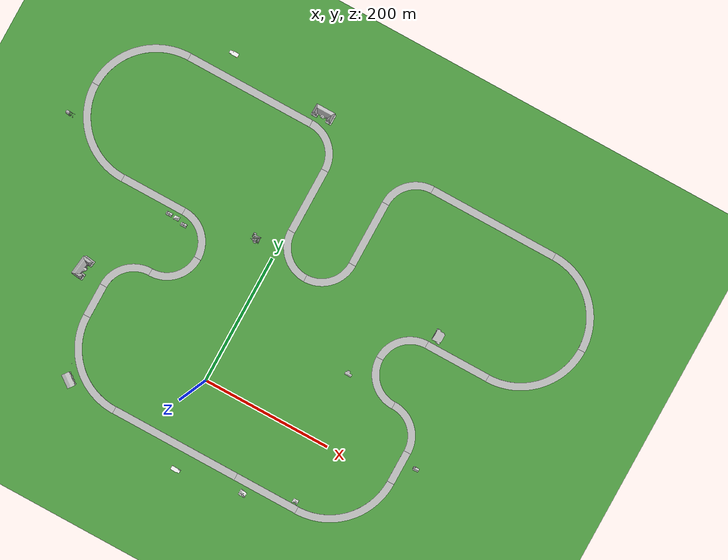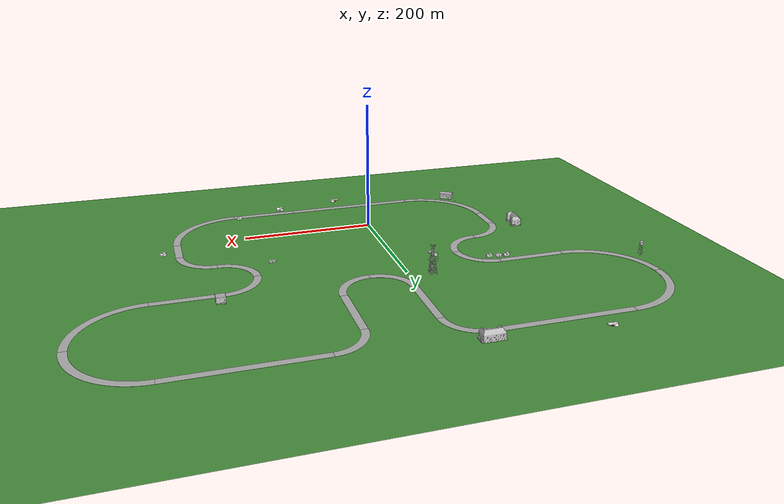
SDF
<sdf version="1.6">
 <world name="default">
  <light name="sun" type="directional">
   <pose>0 0 10 0 -0 0</pose>
   <diffuse>0.8 0.8 0.8 1</diffuse>
   <specular>0.2 0.2 0.2 1</specular>
   <attenuation>
    <range>1000</range>
    <constant>0.9</constant>
    <linear>0.01</linear>
    <quadratic>0.001</quadratic>
   </attenuation>
   <direction>-0.5 0.1 -0.9</direction>
  </light>
  <gravity>0 0 -9.8</gravity>
  <magnetic_field>6e-06 2.3e-05 -4.2e-05</magnetic_field>
  <atmosphere type="adiabatic"/>
  <physics name="default_physics" default="0" type="ode">
   <max_step_size>0.001</max_step_size>
   <real_time_factor>1</real_time_factor>
   <real_time_update_rate>1000</real_time_update_rate>
  </physics>
  <scene><ambient>0.4 0.4 0.4 1</ambient><background>0.7 0.7 0.7 1</background><shadows>1</shadows></scene>
  <audio><device>default</device></audio>
  <spherical_coordinates>
   <surface_model>EARTH_WGS84</surface_model>
   <latitude_deg>0</latitude_deg>
   <longitude_deg>0</longitude_deg>
   <elevation>0</elevation>
   <heading_deg>0</heading_deg>
  </spherical_coordinates>
  <model name="ground_plane">
   <static>1</static>
   <link name="link">
    <collision name="collision">
     <geometry><plane><normal>0 0 1</normal><size>100 100</size></plane></geometry>
     <surface><friction><ode><mu>100</mu><mu2>50</mu2></ode></friction></surface>
    </collision>
    <visual name="visual">
     <cast_shadows>0</cast_shadows>
     <geometry><plane><normal>0 0 1</normal><size>10000 10000</size></plane></geometry>
     <material>
      <script><uri>file://media/materials/scripts/ds_sim.material</uri><name>DSSim/GrassBackground</name></script>
     </material>
    </visual>
   </link>
  </model>
  <model name="Gas Station">
   <static>1</static>
   <link name="link">
    <collision name="collision">
     <geometry><mesh><uri>model://gas_station/meshes/gas_station.dae</uri></mesh></geometry>
    </collision>
    <visual name="visual">
     <geometry><mesh><uri>model://gas_station/meshes/gas_station.dae</uri></mesh></geometry>
     <material>
      <script>
       <uri>model://gas_station/materials/scripts</uri>
       <uri>model://gas_station/materials/textures</uri>
       <name>GasStation/Diffuse</name>
      </script>
      <shader type="normal_map_object_space"><normal_map>GasStation_Normal.png</normal_map></shader>
     </material>
    </visual>
   </link>
   <pose>24.6663 -132.783 0 0 -0 3.10504</pose>
  </model>
  <model name="(DS) Straight Road - 200m_8">
   <static>1</static>
   <link name="link">
    <inertial>
     <mass>1</mass>
     <inertia><ixx>1</ixx><iyy>1</iyy><izz>1</izz><ixy>0</ixy><ixz>0</ixz><iyz>0</iyz></inertia>
    </inertial>
    <collision name="collision">
     <geometry><mesh><uri>model://ds_straight_road_200m/meshes/straight_road_200m.dae</uri></mesh></geometry>
    </collision>
    <visual name="visual">
     <geometry><mesh><uri>model://ds_straight_road_200m/meshes/straight_road_200m.dae</uri></mesh></geometry>
    </visual>
   </link>
   <pose>4.98041 -90.7828 0 0 -0 0</pose>
  </model>
  <model name="(DS) Straight Road - 100m_0">
   <static>1</static>
   <link name="link">
    <inertial>
     <mass>1</mass>
     <inertia><ixx>1</ixx><iyy>1</iyy><izz>1</izz><ixy>0</ixy><ixz>0</ixz><iyz>0</iyz></inertia>
    </inertial>
    <collision name="collision">
     <geometry><mesh><uri>model://ds_straight_road_100m/meshes/straight_road_100m.dae</uri></mesh></geometry>
    </collision>
    <visual name="visual">
     <geometry><mesh><uri>model://ds_straight_road_100m/meshes/straight_road_100m.dae</uri></mesh></geometry>
    </visual>
   </link>
   <pose>154.969 -90.7906 0 0 -0 0</pose>
  </model>
  <model name="(DS) Curved Road - 100m_3">
   <static>1</static>
   <link name="link">
    <inertial>
     <mass>1</mass>
     <inertia><ixx>1</ixx><iyy>1</iyy><izz>1</izz><ixy>0</ixy><ixz>0</ixz><iyz>0</iyz></inertia>
    </inertial>
    <collision name="collision">
     <geometry><mesh><uri>model://ds_curved_road_100m/meshes/curved_road_100m.dae</uri></mesh></geometry>
    </collision>
    <visual name="visual">
     <geometry><mesh><uri>model://ds_curved_road_100m/meshes/curved_road_100m.dae</uri></mesh></geometry>
    </visual>
   </link>
   <pose>257.67 -53.7514 0 0 -0 0</pose>
  </model>
  <model name="(DS) Straight Road - 50m">
   <static>1</static>
   <link name="link">
    <inertial>
     <mass>1</mass>
     <inertia><ixx>1</ixx><iyy>1</iyy><izz>1</izz><ixy>0</ixy><ixz>0</ixz><iyz>0</iyz></inertia>
    </inertial>
    <collision name="collision">
     <geometry><mesh><uri>model://ds_straight_road_50m/meshes/straight_road_50m.dae</uri></mesh></geometry>
    </collision>
    <visual name="visual">
     <geometry><mesh><uri>model://ds_straight_road_50m/meshes/straight_road_50m.dae</uri></mesh></geometry>
    </visual>
   </link>
   <pose>314.936 23.9712 0 0 0 -1.5707</pose>
  </model>
  <model name="(DS) Curved Road - 100m_7">
   <static>1</static>
   <link name="link">
    <inertial>
     <mass>1</mass>
     <inertia><ixx>1</ixx><iyy>1</iyy><izz>1</izz><ixy>0</ixy><ixz>0</ixz><iyz>0</iyz></inertia>
    </inertial>
    <collision name="collision">
     <geometry><mesh><uri>model://ds_curved_road_100m/meshes/curved_road_100m.dae</uri></mesh></geometry>
    </collision>
    <visual name="visual">
     <geometry><mesh><uri>model://ds_curved_road_100m/meshes/curved_road_100m.dae</uri></mesh></geometry>
    </visual>
   </link>
   <pose>-147.731 -53.7561 0 0 0 -1.5707</pose>
  </model>
  <model name="(DS) Straight Road - 50m_2">
   <static>1</static>
   <link name="link">
    <inertial>
     <mass>1</mass>
     <inertia><ixx>1</ixx><iyy>1</iyy><izz>1</izz><ixy>0</ixy><ixz>0</ixz><iyz>0</iyz></inertia>
    </inertial>
    <collision name="collision">
     <geometry><mesh><uri>model://ds_straight_road_50m/meshes/straight_road_50m.dae</uri></mesh></geometry>
    </collision>
    <visual name="visual">
     <geometry><mesh><uri>model://ds_straight_road_50m/meshes/straight_road_50m.dae</uri></mesh></geometry>
    </visual>
   </link>
   <pose>-204.97 23.9511 0 0 -0 1.5707</pose>
  </model>
  <model name="(DS) Curved Road - 50m_1">
   <static>1</static>
   <link name="link">
    <inertial>
     <mass>1</mass>
     <inertia><ixx>1</ixx><iyy>1</iyy><izz>1</izz><ixy>0</ixy><ixz>0</ixz><iyz>0</iyz></inertia>
    </inertial>
    <collision name="collision">
     <geometry><mesh><uri>model://ds_curved_road_50m/meshes/curved_road_50m.dae</uri></mesh></geometry>
    </collision>
    <visual name="visual">
     <geometry><mesh><uri>model://ds_curved_road_50m/meshes/curved_road_50m.dae</uri></mesh></geometry>
    </visual>
   </link>
   <pose>-172.719 76.5402 0 0 -0 3.14159</pose>
  </model>
  <model name="(DS) Curved Road - 50m_2">
   <static>1</static>
   <link name="link">
    <inertial>
     <mass>1</mass>
     <inertia><ixx>1</ixx><iyy>1</iyy><izz>1</izz><ixy>0</ixy><ixz>0</ixz><iyz>0</iyz></inertia>
    </inertial>
    <collision name="collision">
     <geometry><mesh><uri>model://ds_curved_road_50m/meshes/curved_road_50m.dae</uri></mesh></geometry>
    </collision>
    <visual name="visual">
     <geometry><mesh><uri>model://ds_curved_road_50m/meshes/curved_road_50m.dae</uri></mesh></geometry>
    </visual>
   </link>
   <pose>-117.245 120.825 0 0 -0 0</pose>
  </model>
  <model name="(DS) Curved Road - 50m_3">
   <static>1</static>
   <link name="link">
    <inertial>
     <mass>1</mass>
     <inertia><ixx>1</ixx><iyy>1</iyy><izz>1</izz><ixy>0</ixy><ixz>0</ixz><iyz>0</iyz></inertia>
    </inertial>
    <collision name="collision">
     <geometry><mesh><uri>model://ds_curved_road_50m/meshes/curved_road_50m.dae</uri></mesh></geometry>
    </collision>
    <visual name="visual">
     <geometry><mesh><uri>model://ds_curved_road_50m/meshes/curved_road_50m.dae</uri></mesh></geometry>
    </visual>
   </link>
   <pose>-117.244 176.289 0 0 -0 1.5707</pose>
  </model>
  <model name="(DS) Straight Road - 100m_5">
   <static>1</static>
   <link name="link">
    <inertial>
     <mass>1</mass>
     <inertia><ixx>1</ixx><iyy>1</iyy><izz>1</izz><ixy>0</ixy><ixz>0</ixz><iyz>0</iyz></inertia>
    </inertial>
    <collision name="collision">
     <geometry><mesh><uri>model://ds_straight_road_100m/meshes/straight_road_100m.dae</uri></mesh></geometry>
    </collision>
    <visual name="visual">
     <geometry><mesh><uri>model://ds_straight_road_100m/meshes/straight_road_100m.dae</uri></mesh></geometry>
    </visual>
   </link>
   <pose>-194.968 208.536 0 0 -0 0</pose>
  </model>
  <model name="(DS) Curved Road - 50m_7">
   <static>1</static>
   <link name="link">
    <inertial>
     <mass>1</mass>
     <inertia><ixx>1</ixx><iyy>1</iyy><izz>1</izz><ixy>0</ixy><ixz>0</ixz><iyz>0</iyz></inertia>
    </inertial>
    <collision name="collision">
     <geometry><mesh><uri>model://ds_curved_road_50m/meshes/curved_road_50m.dae</uri></mesh></geometry>
    </collision>
    <visual name="visual">
     <geometry><mesh><uri>model://ds_curved_road_50m/meshes/curved_road_50m.dae</uri></mesh></geometry>
    </visual>
   </link>
   <pose>282.694 76.6819 0 0 -0 1.5707</pose>
  </model>
  <model name="(DS) Curved Road - 50m_8">
   <static>1</static>
   <link name="link">
    <inertial>
     <mass>1</mass>
     <inertia><ixx>1</ixx><iyy>1</iyy><izz>1</izz><ixy>0</ixy><ixz>0</ixz><iyz>0</iyz></inertia>
    </inertial>
    <collision name="collision">
     <geometry><mesh><uri>model://ds_curved_road_50m/meshes/curved_road_50m.dae</uri></mesh></geometry>
    </collision>
    <visual name="visual">
     <geometry><mesh><uri>model://ds_curved_road_50m/meshes/curved_road_50m.dae</uri></mesh></geometry>
    </visual>
   </link>
   <pose>227.233 176.317 0 0 -0 3.14159</pose>
  </model>
  <model name="(DS) Curved Road - 50m_9">
   <static>1</static>
   <link name="link">
    <inertial>
     <mass>1</mass>
     <inertia><ixx>1</ixx><iyy>1</iyy><izz>1</izz><ixy>0</ixy><ixz>0</ixz><iyz>0</iyz></inertia>
    </inertial>
    <collision name="collision">
     <geometry><mesh><uri>model://ds_curved_road_50m/meshes/curved_road_50m.dae</uri></mesh></geometry>
    </collision>
    <visual name="visual">
     <geometry><mesh><uri>model://ds_curved_road_50m/meshes/curved_road_50m.dae</uri></mesh></geometry>
    </visual>
   </link>
   <pose>227.236 120.969 0 0 0 -1.5707</pose>
  </model>
  <model name="(DS) Straight Road - 100m_6">
   <static>1</static>
   <link name="link">
    <inertial>
     <mass>1</mass>
     <inertia><ixx>1</ixx><iyy>1</iyy><izz>1</izz><ixy>0</ixy><ixz>0</ixz><iyz>0</iyz></inertia>
    </inertial>
    <collision name="collision">
     <geometry><mesh><uri>model://ds_straight_road_100m/meshes/straight_road_100m.dae</uri></mesh></geometry>
    </collision>
    <visual name="visual">
     <geometry><mesh><uri>model://ds_straight_road_100m/meshes/straight_road_100m.dae</uri></mesh></geometry>
    </visual>
   </link>
   <pose>304.773 208.555 0 0 -0 0</pose>
  </model>
  <model name="(DS) Curved Road - 100m_8">
   <static>1</static>
   <link name="link">
    <inertial>
     <mass>1</mass>
     <inertia><ixx>1</ixx><iyy>1</iyy><izz>1</izz><ixy>0</ixy><ixz>0</ixz><iyz>0</iyz></inertia>
    </inertial>
    <collision name="collision">
     <geometry><mesh><uri>model://ds_curved_road_100m/meshes/curved_road_100m.dae</uri></mesh></geometry>
    </collision>
    <visual name="visual">
     <geometry><mesh><uri>model://ds_curved_road_100m/meshes/curved_road_100m.dae</uri></mesh></geometry>
    </visual>
   </link>
   <pose>407.453 245.59 0 0 -0 0</pose>
  </model>
  <model name="(DS) Curved Road - 100m_9">
   <static>1</static>
   <link name="link">
    <inertial>
     <mass>1</mass>
     <inertia><ixx>1</ixx><iyy>1</iyy><izz>1</izz><ixy>0</ixy><ixz>0</ixz><iyz>0</iyz></inertia>
    </inertial>
    <collision name="collision">
     <geometry><mesh><uri>model://ds_curved_road_100m/meshes/curved_road_100m.dae</uri></mesh></geometry>
    </collision>
    <visual name="visual">
     <geometry><mesh><uri>model://ds_curved_road_100m/meshes/curved_road_100m.dae</uri></mesh></geometry>
    </visual>
   </link>
   <pose>-297.696 245.57 0 0 0 -1.5707</pose>
  </model>
  <model name="(DS) Curved Road - 100m_10">
   <static>1</static>
   <link name="link">
    <inertial>
     <mass>1</mass>
     <inertia><ixx>1</ixx><iyy>1</iyy><izz>1</izz><ixy>0</ixy><ixz>0</ixz><iyz>0</iyz></inertia>
    </inertial>
    <collision name="collision">
     <geometry><mesh><uri>model://ds_curved_road_100m/meshes/curved_road_100m.dae</uri></mesh></geometry>
    </collision>
    <visual name="visual">
     <geometry><mesh><uri>model://ds_curved_road_100m/meshes/curved_road_100m.dae</uri></mesh></geometry>
    </visual>
   </link>
   <pose>-297.688 350.509 0 0 -0 3.14153</pose>
  </model>
  <model name="(DS) Curved Road - 100m_11">
   <static>1</static>
   <link name="link">
    <inertial>
     <mass>1</mass>
     <inertia><ixx>1</ixx><iyy>1</iyy><izz>1</izz><ixy>0</ixy><ixz>0</ixz><iyz>0</iyz></inertia>
    </inertial>
    <collision name="collision">
     <geometry><mesh><uri>model://ds_curved_road_100m/meshes/curved_road_100m.dae</uri></mesh></geometry>
    </collision>
    <visual name="visual">
     <geometry><mesh><uri>model://ds_curved_road_100m/meshes/curved_road_100m.dae</uri></mesh></geometry>
    </visual>
   </link>
   <pose>407.459 351.038 0 0 -0 1.5707</pose>
  </model>
  <model name="(DS) Straight Road - 200m_9">
   <static>1</static>
   <link name="link">
    <inertial>
     <mass>1</mass>
     <inertia><ixx>1</ixx><iyy>1</iyy><izz>1</izz><ixy>0</ixy><ixz>0</ixz><iyz>0</iyz></inertia>
    </inertial>
    <collision name="collision">
     <geometry><mesh><uri>model://ds_straight_road_200m/meshes/straight_road_200m.dae</uri></mesh></geometry>
    </collision>
    <visual name="visual">
     <geometry><mesh><uri>model://ds_straight_road_200m/meshes/straight_road_200m.dae</uri></mesh></geometry>
    </visual>
   </link>
   <pose>-144.993 407.764 0 0 -0 0</pose>
  </model>
  <model name="(DS) Straight Road - 200m_11">
   <static>1</static>
   <link name="link">
    <inertial>
     <mass>1</mass>
     <inertia><ixx>1</ixx><iyy>1</iyy><izz>1</izz><ixy>0</ixy><ixz>0</ixz><iyz>0</iyz></inertia>
    </inertial>
    <collision name="collision">
     <geometry><mesh><uri>model://ds_straight_road_200m/meshes/straight_road_200m.dae</uri></mesh></geometry>
    </collision>
    <visual name="visual">
     <geometry><mesh><uri>model://ds_straight_road_200m/meshes/straight_road_200m.dae</uri></mesh></geometry>
    </visual>
   </link>
   <pose>254.821 408.288 0 0 -0 0</pose>
  </model>
  <model name="(DS) Curved Road - 50m_10">
   <static>1</static>
   <link name="link">
    <inertial>
     <mass>1</mass>
     <inertia><ixx>1</ixx><iyy>1</iyy><izz>1</izz><ixy>0</ixy><ixz>0</ixz><iyz>0</iyz></inertia>
    </inertial>
    <collision name="collision">
     <geometry><mesh><uri>model://ds_curved_road_50m/meshes/curved_road_50m.dae</uri></mesh></geometry>
    </collision>
    <visual name="visual">
     <geometry><mesh><uri>model://ds_curved_road_50m/meshes/curved_road_50m.dae</uri></mesh></geometry>
    </visual>
   </link>
   <pose>82.8035 220.58 0 0 -0 0</pose>
  </model>
  <model name="(DS) Curved Road - 50m_11">
   <static>1</static>
   <link name="link">
    <inertial>
     <mass>1</mass>
     <inertia><ixx>1</ixx><iyy>1</iyy><izz>1</izz><ixy>0</ixy><ixz>0</ixz><iyz>0</iyz></inertia>
    </inertial>
    <collision name="collision">
     <geometry><mesh><uri>model://ds_curved_road_50m/meshes/curved_road_50m.dae</uri></mesh></geometry>
    </collision>
    <visual name="visual">
     <geometry><mesh><uri>model://ds_curved_road_50m/meshes/curved_road_50m.dae</uri></mesh></geometry>
    </visual>
   </link>
   <pose>127.086 376.051 0 0 -0 3.14159</pose>
  </model>
  <model name="(DS) Curved Road - 50m_12">
   <static>1</static>
   <link name="link">
    <inertial>
     <mass>1</mass>
     <inertia><ixx>1</ixx><iyy>1</iyy><izz>1</izz><ixy>0</ixy><ixz>0</ixz><iyz>0</iyz></inertia>
    </inertial>
    <collision name="collision">
     <geometry><mesh><uri>model://ds_curved_road_50m/meshes/curved_road_50m.dae</uri></mesh></geometry>
    </collision>
    <visual name="visual">
     <geometry><mesh><uri>model://ds_curved_road_50m/meshes/curved_road_50m.dae</uri></mesh></geometry>
    </visual>
   </link>
   <pose>27.3315 220.574 0 0 0 -1.5707</pose>
  </model>
  <model name="(DS) Curved Road - 50m_13">
   <static>1</static>
   <link name="link">
    <inertial>
     <mass>1</mass>
     <inertia><ixx>1</ixx><iyy>1</iyy><izz>1</izz><ixy>0</ixy><ixz>0</ixz><iyz>0</iyz></inertia>
    </inertial>
    <collision name="collision">
     <geometry><mesh><uri>model://ds_curved_road_50m/meshes/curved_road_50m.dae</uri></mesh></geometry>
    </collision>
    <visual name="visual">
     <geometry><mesh><uri>model://ds_curved_road_50m/meshes/curved_road_50m.dae</uri></mesh></geometry>
    </visual>
   </link>
   <pose>-17.2474 375.532 0 0 -0 1.5707</pose>
  </model>
  <model name="(DS) Straight Road - 100m_7">
   <static>1</static>
   <link name="link">
    <inertial>
     <mass>1</mass>
     <inertia><ixx>1</ixx><iyy>1</iyy><izz>1</izz><ixy>0</ixy><ixz>0</ixz><iyz>0</iyz></inertia>
    </inertial>
    <collision name="collision">
     <geometry><mesh><uri>model://ds_straight_road_100m/meshes/straight_road_100m.dae</uri></mesh></geometry>
    </collision>
    <visual name="visual">
     <geometry><mesh><uri>model://ds_straight_road_100m/meshes/straight_road_100m.dae</uri></mesh></geometry>
    </visual>
   </link>
   <pose>15.0897 297.99 0 0 0 -1.5707</pose>
  </model>
  <model name="(DS) Straight Road - 100m_8">
   <static>1</static>
   <link name="link">
    <inertial>
     <mass>1</mass>
     <inertia><ixx>1</ixx><iyy>1</iyy><izz>1</izz><ixy>0</ixy><ixz>0</ixz><iyz>0</iyz></inertia>
    </inertial>
    <collision name="collision">
     <geometry><mesh><uri>model://ds_straight_road_100m/meshes/straight_road_100m.dae</uri></mesh></geometry>
    </collision>
    <visual name="visual">
     <geometry><mesh><uri>model://ds_straight_road_100m/meshes/straight_road_100m.dae</uri></mesh></geometry>
    </visual>
   </link>
   <pose>94.847 298.317 0 0 -0 1.5707</pose>
  </model>
  <model name="House 1">
   <static>1</static>
   <link name="link">
    <collision name="collision">
     <geometry><mesh><uri>model://house_1/meshes/house_1.dae</uri></mesh></geometry>
    </collision>
    <visual name="visual">
     <geometry><mesh><uri>model://house_1/meshes/house_1.dae</uri></mesh></geometry>
     <material>
      <script>
       <uri>model://house_1/materials/scripts</uri>
       <uri>model://house_1/materials/textures</uri>
       <name>House_1/Diffuse</name>
      </script>
      <shader type="normal_map_object_space"><normal_map>House_1_Normal.png</normal_map></shader>
     </material>
    </visual>
   </link>
   <pose>125.001 -116.763 0 0 -0 3.09282</pose>
  </model>
  <model name="House 2">
   <static>1</static>
   <link name="link">
    <collision name="collision">
     <geometry><mesh><uri>model://house_2/meshes/house_2.dae</uri></mesh></geometry>
    </collision>
    <visual name="visual">
     <geometry><mesh><uri>model://house_2/meshes/house_2.dae</uri></mesh></geometry>
     <material>
      <script>
       <uri>model://house_2/materials/scripts</uri>
       <uri>model://house_2/materials/textures</uri>
       <uri>model://house_1/materials/textures</uri>
       <name>House_2/Diffuse</name>
      </script>
      <shader type="normal_map_object_space">
       <normal_map>model://house_1/materials/textures/House_1_Normal.png</normal_map>
      </shader>
     </material>
    </visual>
   </link>
   <pose>196.7 -90.4623 0 0 -0 0</pose>
  </model>
  <model name="House 3">
   <static>1</static>
   <link name="link">
    <collision name="collision">
     <geometry><mesh><uri>model://house_3/meshes/house_3.dae</uri></mesh></geometry>
    </collision>
    <visual name="visual">
     <geometry><mesh><uri>model://house_3/meshes/house_3.dae</uri></mesh></geometry>
     <material>
      <script>
       <uri>model://house_3/materials/scripts</uri>
       <uri>model://house_3/materials/textures</uri>
       <uri>model://house_1/materials/textures</uri>
       <name>House_3/Diffuse</name>
      </script>
      <shader type="normal_map_object_space">
       <normal_map>model://house_1/materials/textures/House_1_Normal.png</normal_map>
      </shader>
     </material>
    </visual>
   </link>
   <pose>327.429 33.9755 0 0 -0 0</pose>
  </model>
  <model name="House 3_0">
   <static>1</static>
   <link name="link">
    <collision name="collision">
     <geometry><mesh><uri>model://house_3/meshes/house_3.dae</uri></mesh></geometry>
    </collision>
    <visual name="visual">
     <geometry><mesh><uri>model://house_3/meshes/house_3.dae</uri></mesh></geometry>
     <material>
      <script>
       <uri>model://house_3/materials/scripts</uri>
       <uri>model://house_3/materials/textures</uri>
       <uri>model://house_1/materials/textures</uri>
       <name>House_3/Diffuse</name>
      </script>
      <shader type="normal_map_object_space">
       <normal_map>model://house_1/materials/textures/House_1_Normal.png</normal_map>
      </shader>
     </material>
    </visual>
   </link>
   <pose>-134.529 181.297 0 0 -0 0</pose>
  </model>
  <model name="House 2_0">
   <static>1</static>
   <link name="link">
    <collision name="collision">
     <geometry><mesh><uri>model://house_2/meshes/house_2.dae</uri></mesh></geometry>
    </collision>
    <visual name="visual">
     <geometry><mesh><uri>model://house_2/meshes/house_2.dae</uri></mesh></geometry>
     <material>
      <script>
       <uri>model://house_2/materials/scripts</uri>
       <uri>model://house_2/materials/textures</uri>
       <uri>model://house_1/materials/textures</uri>
       <name>House_2/Diffuse</name>
      </script>
      <shader type="normal_map_object_space">
       <normal_map>model://house_1/materials/textures/House_1_Normal.png</normal_map>
      </shader>
     </material>
    </visual>
   </link>
   <pose>-149.417 184.49 0 0 -0 0</pose>
  </model>
  <model name="House 3_1">
   <static>1</static>
   <link name="link">
    <collision name="collision">
     <geometry><mesh><uri>model://house_3/meshes/house_3.dae</uri></mesh></geometry>
    </collision>
    <visual name="visual">
     <geometry><mesh><uri>model://house_3/meshes/house_3.dae</uri></mesh></geometry>
     <material>
      <script>
       <uri>model://house_3/materials/scripts</uri>
       <uri>model://house_3/materials/textures</uri>
       <uri>model://house_1/materials/textures</uri>
       <name>House_3/Diffuse</name>
      </script>
      <shader type="normal_map_object_space">
       <normal_map>model://house_1/materials/textures/House_1_Normal.png</normal_map>
      </shader>
     </material>
    </visual>
   </link>
   <pose>-160.501 185.209 0 0 -0 0</pose>
  </model>
  <model name="Gas Station_0">
   <static>1</static>
   <link name="link">
    <collision name="collision">
     <geometry><mesh><uri>model://gas_station/meshes/gas_station.dae</uri></mesh></geometry>
    </collision>
    <visual name="visual">
     <geometry><mesh><uri>model://gas_station/meshes/gas_station.dae</uri></mesh></geometry>
     <material>
      <script>
       <uri>model://gas_station/materials/scripts</uri>
       <uri>model://gas_station/materials/textures</uri>
       <name>GasStation/Diffuse</name>
      </script>
      <shader type="normal_map_object_space"><normal_map>GasStation_Normal.png</normal_map></shader>
     </material>
    </visual>
   </link>
   <pose>-190.454 432.252 0 0 -0 0</pose>
  </model>
  <model name="post_office">
   <static>1</static>
   <link name="link">
    <collision name="collision">
     <geometry><mesh><uri>model://post_office/meshes/post_office.dae</uri></mesh></geometry>
    </collision>
    <visual name="visual">
     <geometry><mesh><uri>model://post_office/meshes/post_office.dae</uri></mesh></geometry>
    </visual>
   </link>
   <pose>175.982 106.852 0 0 -0 0</pose>
  </model>
  <model name="police_station">
   <static>1</static>
   <link name="link">
    <collision name="collision_main">
     <pose>0 0 4.28998 0 -0 0</pose>
     <geometry><box><size>13.037 13.037 8.57995</size></box></geometry>
    </collision>
    <collision name="collision_landing">
     <pose>0 0 0.464086 0 -0 0</pose>
     <geometry><box><size>13.037 16.2446 0.928173</size></box></geometry>
    </collision>
    <visual name="visual">
     <geometry><mesh><uri>model://police_station/meshes/police_station.dae</uri></mesh></geometry>
    </visual>
   </link>
   <pose>263.627 216.953 0 0 -0 0</pose>
  </model>
  <model name="school">
   <static>1</static>
   <link name="link">
    <collision name="collision">
     <geometry><mesh><uri>model://school/meshes/school.dae</uri></mesh></geometry>
    </collision>
    <visual name="visual"><geometry><mesh><uri>model://school/meshes/school.dae</uri></mesh></geometry></visual>
   </link>
   <pose>-35.0831 420.143 0 0 -0 0</pose>
  </model>
  <model name="radio_tower">
   <static>1</static>
   <link name="link">
    <collision name="collision">
     <geometry><mesh><uri>model://radio_tower/meshes/radio_tower.dae</uri></mesh></geometry>
    </collision>
    <visual name="visual">
     <geometry><mesh><uri>model://radio_tower/meshes/radio_tower.dae</uri></mesh></geometry>
    </visual>
   </link>
   <pose>-33.3396 214.201 0 0 -0 0</pose>
  </model>
  <model name="water_tower">
   <static>1</static>
   <link name="link">
    <collision name="collision">
     <geometry><mesh><uri>model://water_tower/meshes/water_tower.dae</uri></mesh></geometry>
    </collision>
    <visual name="visual">
     <geometry><mesh><uri>model://water_tower/meshes/water_tower.dae</uri></mesh></geometry>
    </visual>
   </link>
   <pose>-352.721 242.881 0 0 -0 0</pose>
  </model>
  <model name="school_0">
   <static>1</static>
   <link name="link">
    <collision name="collision">
     <geometry><mesh><uri>model://school/meshes/school.dae</uri></mesh></geometry>
    </collision>
    <visual name="visual"><geometry><mesh><uri>model://school/meshes/school.dae</uri></mesh></geometry></visual>
   </link>
   <pose>-234.646 58.1099 0 0 -0 1.44013</pose>
  </model>
  <model name="Construction Cone">
   <link name="link">
    <collision name="collision">
     <geometry>
      <mesh><scale>10 10 10</scale><uri>model://construction_cone/meshes/construction_cone.dae</uri></mesh>
     </geometry>
    </collision>
    <visual name="visual">
     <geometry>
      <mesh><scale>10 10 10</scale><uri>model://construction_cone/meshes/construction_cone.dae</uri></mesh>
     </geometry>
    </visual>
    <inertial>
     <inertia><ixx>1</ixx><ixy>0</ixy><ixz>0</ixz><iyy>1</iyy><iyz>0</iyz><izz>1</izz></inertia>
     <mass>1</mass>
    </inertial>
   </link>
   <pose>-182.906 -70.2393 -1e-06 4e-06 -0 0</pose>
  </model>
  <model name="Construction Cone_0">
   <link name="link">
    <collision name="collision">
     <geometry>
      <mesh><scale>10 10 10</scale><uri>model://construction_cone/meshes/construction_cone.dae</uri></mesh>
     </geometry>
    </collision>
    <visual name="visual">
     <geometry>
      <mesh><scale>10 10 10</scale><uri>model://construction_cone/meshes/construction_cone.dae</uri></mesh>
     </geometry>
    </visual>
    <inertial>
     <inertia><ixx>1</ixx><ixy>0</ixy><ixz>0</ixz><iyy>1</iyy><iyz>0</iyz><izz>1</izz></inertia>
     <mass>1</mass>
    </inertial>
   </link>
   <pose>-180.975 -71.7248 0 -0 -0 -0</pose>
  </model>
  <model name="Construction Cone_1">
   <link name="link">
    <collision name="collision">
     <geometry>
      <mesh><scale>10 10 10</scale><uri>model://construction_cone/meshes/construction_cone.dae</uri></mesh>
     </geometry>
    </collision>
    <visual name="visual">
     <geometry>
      <mesh><scale>10 10 10</scale><uri>model://construction_cone/meshes/construction_cone.dae</uri></mesh>
     </geometry>
    </visual>
    <inertial>
     <inertia><ixx>1</ixx><ixy>0</ixy><ixz>0</ixz><iyy>1</iyy><iyz>0</iyz><izz>1</izz></inertia>
     <mass>1</mass>
    </inertial>
   </link>
   <pose>-178.911 -73.5559 -0 0 -0 0</pose>
  </model>
  <model name="Construction Cone_2">
   <link name="link">
    <collision name="collision">
     <geometry>
      <mesh><scale>10 10 10</scale><uri>model://construction_cone/meshes/construction_cone.dae</uri></mesh>
     </geometry>
    </collision>
    <visual name="visual">
     <geometry>
      <mesh><scale>10 10 10</scale><uri>model://construction_cone/meshes/construction_cone.dae</uri></mesh>
     </geometry>
    </visual>
    <inertial>
     <inertia><ixx>1</ixx><ixy>0</ixy><ixz>0</ixz><iyy>1</iyy><iyz>0</iyz><izz>1</izz></inertia>
     <mass>1</mass>
    </inertial>
   </link>
   <pose>-176.723 -75.7937 -0 0 -0 0</pose>
  </model>
  <model name="fire_station">
   <static>1</static>
   <link name="link">
    <collision name="main">
     <pose>0 -0.135 5 0 -0 0</pose>
     <geometry><box><size>19.98 9.68 10</size></box></geometry>
    </collision>
    <collision name="front_top">
     <pose>0 4.957 7 0 -0 0</pose>
     <geometry><box><size>20 0.515 6</size></box></geometry>
    </collision>
    <collision name="column_0">
     <pose>9.333 4.957 2 0 -0 0</pose>
     <geometry><box><size>1.315 0.515 4</size></box></geometry>
    </collision>
    <collision name="column_1">
     <pose>3.33 4.957 2 0 -0 0</pose>
     <geometry><box><size>2.63 0.515 4</size></box></geometry>
    </collision>
    <collision name="column_2">
     <pose>-3.33 4.957 2 0 -0 0</pose>
     <geometry><box><size>2.63 0.515 4</size></box></geometry>
    </collision>
    <collision name="column_3">
     <pose>-9.333 4.957 2 0 -0 0</pose>
     <geometry><box><size>1.315 0.515 4</size></box></geometry>
    </collision>
    <collision name="roof_back">
     <pose>0 -2.742 10.467 0.25 -0 0</pose>
     <geometry><box><size>21.47 6.12 0.28</size></box></geometry>
    </collision>
    <collision name="roof_front">
     <pose>0 3.12 10.467 -0.25 0 0</pose>
     <geometry><box><size>21.47 6.12 0.28</size></box></geometry>
    </collision>
    <collision name="roof_base">
     <pose>0 0.188 9.705 0 -0 0</pose>
     <geometry><box><size>21.47 11.86 0.28</size></box></geometry>
    </collision>
    <collision name="roof_filling_0">
     <pose>0 0.188 9.985 0 -0 0</pose>
     <geometry><box><size>21.47 9.53 0.28</size></box></geometry>
    </collision>
    <collision name="roof_filling_1">
     <pose>0 0.188 10.14 0 -0 0</pose>
     <geometry><box><size>21.47 8.41 0.28</size></box></geometry>
    </collision>
    <collision name="roof_filling_2">
     <pose>0 0.188 10.42 0 -0 0</pose>
     <geometry><box><size>21.47 6.25 0.28</size></box></geometry>
    </collision>
    <collision name="roof_filling_3">
     <pose>0 0.188 10.7 0 -0 0</pose>
     <geometry><box><size>21.47 4.05 0.28</size></box></geometry>
    </collision>
    <collision name="roof_filling_4">
     <pose>0 0.188 10.98 0 -0 0</pose>
     <geometry><box><size>21.47 1.83 0.28</size></box></geometry>
    </collision>
    <visual name="visual">
     <geometry><mesh><uri>model://fire_station/meshes/fire_station.dae</uri></mesh></geometry>
    </visual>
   </link>
   <pose>-171.658 -92.8053 0 0 0 -0.641598</pose>
  </model>
 </world>
</sdf>
